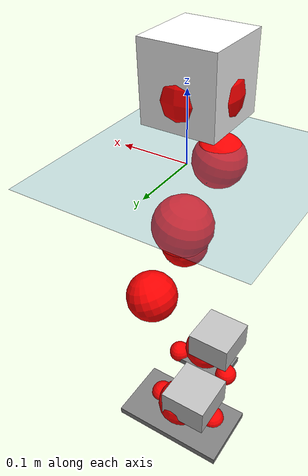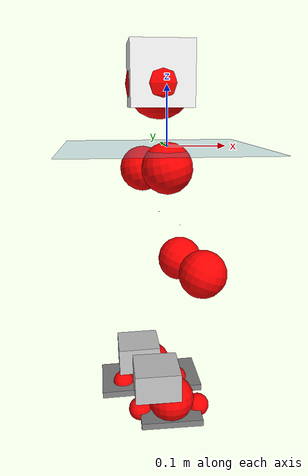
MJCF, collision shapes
<mujoco model="pi_12dof_release_v1">
  <compiler angle="radian" assetdir="assets" balanceinertia="true" inertiafromgeom="false"/>

  <option timestep="0.005" density="1.2" viscosity="2e-05"/>

  <size nkey="1"/>

  <visual>
    <quality shadowsize="8192"/>
    <map shadowclip="0.5"/>
  </visual>

  <default>
    <default class="/">
      <joint armature="0.01" damping="0.01" frictionloss="0.01"/>
      <geom contype="0" conaffinity="0" group="1" solref="-1000 -80"/>
      <site size="0.01 0.005 0.005" group="5"/>
      <general forcelimited="true" biastype="affine" gainprm="20" biasprm="0 -20 -0.5"/>
      <default class="foot">
        <geom size="0.0845 0.036 0.005" type="box" condim="6" group="4" priority="1" friction="0.9 0.2 0.2" solimp="0.015 1 0.005"/>
      </default>
      <default class="reward_collision_sphere">
        <geom group="5" rgba="1 0 0 1"/>
      </default>
    </default>
  </default>

  <asset>
    <texture type="skybox" colorspace="auto" name="//unnamed_texture_0" builtin="gradient" rgb1="0.95 0.95 0.95" rgb2="0.95 0.95 0.95" width="100" height="600"/>
    <texture type="2d" colorspace="auto" name="texplane" builtin="checker" rgb1="0.345 0.575 0.748" rgb2="0.345 0.575 0.748" markrgb="1 1 1" width="512" height="512"/>
    <material name="MatPlane" class="/" texture="texplane" texuniform="true" texrepeat="2 2" specular="0.9"/>
    <mesh name="baselink_1" class="/" file="baselink_1.STL"/>
    <mesh name="r_hip_pitch_link" class="/" file="r_hip_pitch_link.STL"/>
    <mesh name="r_hip_roll_link" class="/" file="r_hip_roll_link.STL"/>
    <mesh name="r_thigh_link" class="/" file="r_thigh_link.STL"/>
    <mesh name="r_calf_link" class="/" file="r_calf_link.STL"/>
    <mesh name="r_ankle_pitch_link" class="/" file="r_ankle_pitch_link.STL"/>
    <mesh name="r_ankle_roll_link" class="/" file="r_ankle_roll_link.STL"/>
    <mesh name="l_hip_pitch_link" class="/" file="l_hip_pitch_link.STL"/>
    <mesh name="l_hip_roll_link" class="/" file="l_hip_roll_link.STL"/>
    <mesh name="l_thigh_link" class="/" file="l_thigh_link.STL"/>
    <mesh name="l_calf_link" class="/" file="l_calf_link.STL"/>
    <mesh name="l_ankle_pitch_link" class="/" file="l_ankle_pitch_link.STL"/>
    <mesh name="l_ankle_roll_link" class="/" file="l_ankle_roll_link.STL"/>
  </asset>

  <worldbody>
    <geom name="floor" class="/" size="100 100 0.125" type="plane" group="0" material="MatPlane"/>
    <light name="toplight_shadow" class="/" pos="0 0 5" dir="0.0990148 0.0990148 -0.990148" type="directional" ambient="0.04 0.04 0.04" diffuse="0.55 0.55 0.55" specular="0.12 0.12 0.12"/>
    <light name="toplight_fill" class="/" pos="0 0 5" dir="0.0990148 0.0990148 -0.990148" type="directional" castshadow="false" ambient="0.04 0.04 0.04" diffuse="0.3 0.3 0.3" specular="0.08 0.08 0.08"/>
    <body name="trunk" pos="-0.0125747 -0.00584348 0.00096833" quat="0.999998 -0.0016736 -0.000719152 -0.000487466">
      <inertial pos="0.00117879 0.000767631 0.058086" quat="0.700534 0.01922 -0.0268882 0.712853" mass="2.23265" diaginertia="0.00201772 0.00281192 0.0229238"/>
      <joint name="//unnamed_joint_0" type="free"/>
      <geom name="//unnamed_geom_1" class="/" type="mesh" density="0" rgba="1 1 1 1" mesh="baselink_1"/>
      <geom name="//unnamed_geom_2" class="/" size="0.0505266 0.0505266 0.0505266" pos="0 0 0.113311" type="box" rgba="1 1 1 1"/>
      <geom name="//unnamed_geom_3" class="reward_collision_sphere" size="0.0555792" pos="0 0 0.0991475"/>
      <site name="imu" class="/" pos="-0.0211856 0.0106688 0.0704286" size="0.0101053"/>
      <camera name="track" class="/" pos="0 -1.67308 0" quat="0.707107 0.707107 0 0" mode="trackcom"/>
      <camera name="ego_camera" class="/" pos="0.0583997 0 0.254951" quat="-0.5 -0.5 0.5 0.5"/>
      <body name="r_hip_pitch_link" pos="-0.00291113 -0.0203939 -0.0385604" quat="0.991496 -0.00194783 -0.130121 -7.58769e-05">
        <inertial pos="0.0142137 -0.0402315 -0.00028867" quat="-0.0219484 0.706065 -0.0318611 0.707089" mass="0.399005" diaginertia="3.24211e-05 4.53045e-05 0.000485885"/>
        <joint name="r_hip_pitch_joint" class="/" pos="0 0 0" axis="-0.0235243 -0.998411 0.0512096" stiffness="0.00706345" range="-2.01796 1.0645" armature="0.00981817" damping="0" frictionloss="0.01043"/>
        <geom name="//unnamed_geom_4" class="/" type="mesh" density="0" rgba="0.75294 0.75294 0.75294 1" mesh="r_hip_pitch_link"/>
        <geom name="//unnamed_geom_5" class="/" size="0.000505266 0.000505266 0.000505266" type="box" rgba="0.75294 0.75294 0.75294 1"/>
        <body name="r_hip_roll_link" pos="0.00914763 -0.0479568 0.00773435" quat="0.999995 0.00264714 -0.00114814 -0.0013319">
          <inertial pos="0.000143598 -0.00276068 -0.0715518" quat="0.687388 -0.0744689 -0.106386 0.714587" mass="0.424216" diaginertia="0.000101907 0.000121386 0.000779388"/>
          <joint name="r_hip_roll_joint" class="/" pos="0 0 0" axis="-0.99833 -0.0572846 0.0074094" stiffness="0.0100722" range="-0.154656 0.249857" armature="0.00654111" damping="0.0387535" frictionloss="0.015174"/>
          <geom name="//unnamed_geom_6" class="/" type="mesh" density="0" rgba="0.75294 0.75294 0.75294 1" mesh="r_hip_roll_link"/>
          <geom name="//unnamed_geom_7" class="/" size="0.000505266 0.000505266 0.000505266" type="box" rgba="0.75294 0.75294 0.75294 1"/>
          <geom name="//unnamed_geom_8" class="reward_collision_sphere" size="0.0404212"/>
          <body name="r_thigh_link" pos="-0.00248471 0.0150473 -0.0973405" quat="0.999988 -0.00240233 0.00201971 -0.00381953">
            <inertial pos="-0.00696872 0.00455339 -0.068121" quat="0.73122 0.678852 -0.0174508 0.064604" mass="0.0928393" diaginertia="3.61623e-05 3.50614e-05 0.000338238"/>
            <joint name="r_thigh_joint" class="/" pos="0 0 0" axis="0.0290348 0.0288092 -0.999163" stiffness="0.0706034" range="-0.499874 0.315232" armature="0.0104401" damping="0.00255303" frictionloss="0.0135403"/>
            <geom name="//unnamed_geom_9" class="/" type="mesh" density="0" rgba="0.75294 0.75294 0.75294 1" mesh="r_thigh_link"/>
            <geom name="//unnamed_geom_10" class="/" size="0.000505266 0.000505266 0.000505266" type="box" rgba="0.75294 0.75294 0.75294 1"/>
            <body name="r_calf_link" pos="0.0147013 -0.0164891 -0.0881814" quat="0.947618 -6.23805e-05 0.319405 0.000194304">
              <inertial pos="-0.0145525 -0.00515831 -0.0856399" quat="0.998889 -0.0455857 0.00448236 0.0110677" mass="0.675211" diaginertia="0.000841279 0.00132255 0.000816105"/>
              <joint name="r_calf_joint" class="/" pos="0 0 0" axis="-0.00863819 -0.997769 -0.0661999" stiffness="0.0352512" range="-1.62937 0.634392" armature="0.00673651" damping="0.0187287" frictionloss="0.0114029"/>
              <geom name="//unnamed_geom_11" class="/" type="mesh" density="0" rgba="0.75294 0.75294 0.75294 1" mesh="r_calf_link"/>
              <geom name="//unnamed_geom_12" class="/" size="0.000505266 0.000505266 0.000505266" type="box" rgba="0.75294 0.75294 0.75294 1"/>
              <geom name="//unnamed_geom_13" class="reward_collision_sphere" size="0.0404212"/>
              <body name="r_ankle_pitch_link" pos="0.00113977 0.00677392 -0.206676" quat="0.980066 1.83093e-05 -0.19867 -5.74529e-07">
                <inertial pos="0.0110554 -0.0125871 -0.00420655" quat="-0.00257246 0.707935 -0.000230021 0.706273" mass="0.170839" diaginertia="8.639e-05 8.24466e-05 0.000636929"/>
                <joint name="r_ankle_pitch_joint" class="/" pos="0 0 0" axis="-0.0106878 -0.998941 0.0447567" range="-1.42591 0.512364" armature="0.0154593" damping="0" frictionloss="0.0151172"/>
                <geom name="//unnamed_geom_14" class="/" type="mesh" density="0" rgba="0.75294 0.75294 0.75294 1" mesh="r_ankle_pitch_link"/>
                <geom name="//unnamed_geom_15" class="/" size="0.0394107 0.0404212 0.0252633" type="box" rgba="0.75294 0.75294 0.75294 1"/>
                <body name="r_ankle_roll_link" pos="0.0641157 -0.00216079 -0.0118237" quat="0.999974 -0.00515102 7.71186e-05 -0.00505499">
                  <inertial pos="-0.0341876 0.00930086 -0.032092" quat="0.56053 0.437347 0.422199 0.56239" mass="0.631577" diaginertia="0.000302803 0.000369858 0.00136206"/>
                  <joint name="r_ankle_roll_joint" class="/" pos="0 0 0" axis="-0.997362 0.0612259 0.0390038" stiffness="0.0427782" range="-0.14159 0.199255" armature="0.00814851" damping="0" frictionloss="0.0113347"/>
                  <geom name="//unnamed_geom_16" class="/" type="mesh" density="0" rgba="0.75294 0.75294 0.75294 1" mesh="r_ankle_roll_link"/>
                  <geom name="//unnamed_geom_17" class="/" type="mesh" rgba="0.75294 0.75294 0.75294 1" mesh="r_ankle_roll_link"/>
                  <geom name="right_foot" class="foot" size="0.0538261 0.0319653 0.00564828" pos="-0.0397118 0 -0.0623213"/>
                  <geom name="//unnamed_geom_19" class="reward_collision_sphere" size="0.0404212" pos="-0.0389332 0 -0.0283279"/>
                  <geom name="//unnamed_geom_20" class="reward_collision_sphere" size="0.0202106" pos="0.0116799 0.0167308 -0.0566557"/>
                  <geom name="//unnamed_geom_21" class="reward_collision_sphere" size="0.0202106" pos="-0.0934396 0.0167308 -0.0566557"/>
                  <site name="right_foot" class="foot" pos="-0.0397118 0 -0.0623213" size="0.0101053"/>
                </body>
              </body>
            </body>
          </body>
        </body>
      </body>
      <body name="l_hip_pitch_link" pos="-0.0159129 0.0318553 -0.043502" quat="0.99236 -6.92608e-05 -0.123363 -0.0018424">
        <inertial pos="-0.0130468 0.0608333 0.000387306" quat="-0.0954134 0.709175 0.0482542 0.696878" mass="0.432448" diaginertia="3.81821e-05 4.31191e-05 0.000652011"/>
        <joint name="l_hip_pitch_joint" class="/" pos="0 0 0" axis="-0.0765115 0.99702 -0.00989391" stiffness="0.0635263" range="-0.983465 1.71132" armature="0.0167649" damping="0" frictionloss="0.00651719"/>
        <geom name="//unnamed_geom_22" class="/" type="mesh" density="0" rgba="0.75294 0.75294 0.75294 1" mesh="l_hip_pitch_link"/>
        <geom name="//unnamed_geom_23" class="/" size="0.000505266 0.000505266 0.000505266" type="box" rgba="0.75294 0.75294 0.75294 1"/>
        <body name="l_hip_roll_link" pos="-0.00779148 0.0417541 3.06514e-05" quat="0.999996 0.00176225 0.00101729 0.00190162">
          <inertial pos="-0.00488308 -0.0138264 -0.0868656" quat="0.735439 -0.0713628 -0.0862398 0.668281" mass="0.336055" diaginertia="9.32714e-05 9.85427e-05 0.000760649"/>
          <joint name="l_hip_roll_joint" class="/" pos="0 0 0" axis="-0.999274 -0.0102742 0.0366974" stiffness="0.0433183" range="-0.462502 -0.0261454" armature="0.00374443" damping="0.0442468" frictionloss="0.0142278"/>
          <geom name="//unnamed_geom_24" class="/" type="mesh" density="0" rgba="0.75294 0.75294 0.75294 1" mesh="l_hip_roll_link"/>
          <geom name="//unnamed_geom_25" class="/" size="0.000505266 0.000505266 0.000505266" type="box" rgba="0.75294 0.75294 0.75294 1"/>
          <geom name="//unnamed_geom_26" class="reward_collision_sphere" size="0.0404212"/>
          <body name="l_thigh_link" pos="0.00893562 -0.0113244 -0.083356" quat="0.999972 0.000894756 -0.00723592 -0.00159955">
            <inertial pos="-0.00139253 -0.000390604 -0.0831157" quat="0.66171 0.748963 0.0322645 -0.0123725" mass="0.13658" diaginertia="3.61064e-05 4.2446e-05 0.000333771"/>
            <joint name="l_thigh_joint" class="/" pos="0 0 0" axis="0.00727914 0.0248788 -0.999664" range="-0.327791 0.315342" armature="0.00991048" damping="0.0531047" frictionloss="0.00938491"/>
            <geom name="//unnamed_geom_27" class="/" type="mesh" density="0" rgba="0.75294 0.75294 0.75294 1" mesh="l_thigh_link"/>
            <geom name="//unnamed_geom_28" class="/" size="0.000505266 0.000505266 0.000505266" type="box" rgba="0.75294 0.75294 0.75294 1"/>
            <body name="l_calf_link" pos="0.0138276 -0.00623024 -0.0977832" quat="0.948424 -0.000863558 0.317003 0.00067408">
              <inertial pos="-0.00990744 -0.00441252 -0.100803" quat="0.997511 0.0494875 -0.0478563 -0.0152491" mass="0.876876" diaginertia="0.000937044 0.00131474 0.000917352"/>
              <joint name="l_calf_joint" class="/" pos="0 0 0" axis="-0.0604329 0.998098 -0.0122018" range="-0.843446 1.53482" armature="0.011089" damping="0.00223398" frictionloss="0.0159785"/>
              <geom name="//unnamed_geom_29" class="/" type="mesh" density="0" rgba="0.75294 0.75294 0.75294 1" mesh="l_calf_link"/>
              <geom name="//unnamed_geom_30" class="/" size="0.000505266 0.000505266 0.000505266" type="box" rgba="0.75294 0.75294 0.75294 1"/>
              <geom name="//unnamed_geom_31" class="reward_collision_sphere" size="0.0404212"/>
              <body name="l_ankle_pitch_link" pos="-0.00171109 0.00460252 -0.210818" quat="0.979898 -0.000283806 -0.19948 0.00268981">
                <inertial pos="-0.000291904 3.11731e-05 -0.0046602" quat="-0.0233063 0.715495 -0.0686214 0.694849" mass="0.191509" diaginertia="8.90575e-05 7.83232e-05 0.000556884"/>
                <joint name="l_ankle_pitch_joint" class="/" pos="0 0 0" axis="0.0105874 0.999657 -0.0239401" range="-0.693553 1.12291" armature="0.0125193" damping="0.0549808" frictionloss="0.00857839"/>
                <geom name="//unnamed_geom_32" class="/" type="mesh" density="0" rgba="0.75294 0.75294 0.75294 1" mesh="l_ankle_pitch_link"/>
                <geom name="//unnamed_geom_33" class="/" size="0.0394107 0.0404212 0.0252633" type="box" rgba="0.75294 0.75294 0.75294 1"/>
                <body name="l_ankle_roll_link" pos="0.0612655 0.00382052 0.00170862" quat="1 0.000323665 -7.07232e-05 7.32249e-05">
                  <inertial pos="-0.00617117 0.0146433 -0.0341279" quat="0.559386 0.427858 0.436218 0.560124" mass="0.464981" diaginertia="0.000368313 0.000365361 0.00166624"/>
                  <joint name="l_ankle_roll_joint" class="/" pos="0 0 0" axis="-0.999731 0.0228605 -0.00402274" range="-0.226172 0.329065" armature="0.00890246" damping="0" frictionloss="0.00386658"/>
                  <geom name="//unnamed_geom_34" class="/" type="mesh" density="0" rgba="0.75294 0.75294 0.75294 1" mesh="l_ankle_roll_link"/>
                  <geom name="//unnamed_geom_35" class="/" type="mesh" rgba="0.75294 0.75294 0.75294 1" mesh="l_ankle_roll_link"/>
                  <geom name="left_foot" class="foot" size="0.0958697 0.0535628 0.00609399" pos="-0.0397118 0 -0.0623213"/>
                  <geom name="//unnamed_geom_37" class="reward_collision_sphere" size="0.0404212" pos="-0.0389332 0 -0.0283279"/>
                  <geom name="//unnamed_geom_38" class="reward_collision_sphere" size="0.0202106" pos="0.0116799 -0.0167308 -0.0566557"/>
                  <geom name="//unnamed_geom_39" class="reward_collision_sphere" size="0.0202106" pos="-0.0934396 -0.0167308 -0.0566557"/>
                  <site name="left_foot" class="foot" pos="-0.0397118 0 -0.0623213" size="0.0101053"/>
                </body>
              </body>
            </body>
          </body>
        </body>
      </body>
    </body>
  </worldbody>

  <contact>
    <pair class="/" geom1="floor" geom2="right_foot" name="//unnamed_contact_1"/>
    <pair class="/" geom1="floor" geom2="left_foot" name="//unnamed_contact_0"/>
  </contact>

  <actuator>
    <general name="r_hip_pitch_joint" class="/" joint="r_hip_pitch_joint" forcerange="-16.0193 16.0193" gainprm="19.4522" biasprm="0 -19.4522 -0.537914"/>
    <general name="r_hip_roll_joint" class="/" joint="r_hip_roll_joint" forcerange="-10.8949 10.8949" gainprm="19.4522" biasprm="0 -19.4522 -0.537914"/>
    <general name="r_thigh_joint" class="/" joint="r_thigh_joint" forcerange="-25.879 25.879" gainprm="19.4522" biasprm="0 -19.4522 -0.537914"/>
    <general name="r_calf_joint" class="/" joint="r_calf_joint" forcerange="-9.81826 9.81826" gainprm="19.4522" biasprm="0 -19.4522 -0.537914"/>
    <general name="r_ankle_pitch_joint" class="/" joint="r_ankle_pitch_joint" forcerange="-24.4322 24.4322" gainprm="19.4522" biasprm="0 -19.4522 -0.537914"/>
    <general name="r_ankle_roll_joint" class="/" joint="r_ankle_roll_joint" forcerange="-17.4669 17.4669" gainprm="19.4522" biasprm="0 -19.4522 -0.537914"/>
    <general name="l_hip_pitch_joint" class="/" joint="l_hip_pitch_joint" forcerange="-22.228 22.228" gainprm="19.4522" biasprm="0 -19.4522 -0.537914"/>
    <general name="l_hip_roll_joint" class="/" joint="l_hip_roll_joint" forcerange="-30.5195 30.5195" gainprm="19.4522" biasprm="0 -19.4522 -0.537914"/>
    <general name="l_thigh_joint" class="/" joint="l_thigh_joint" forcerange="-16.2071 16.2071" gainprm="19.4522" biasprm="0 -19.4522 -0.537914"/>
    <general name="l_calf_joint" class="/" joint="l_calf_joint" forcerange="-22.0027 22.0027" gainprm="19.4522" biasprm="0 -19.4522 -0.537914"/>
    <general name="l_ankle_pitch_joint" class="/" joint="l_ankle_pitch_joint" forcerange="-19.7073 19.7073" gainprm="19.4522" biasprm="0 -19.4522 -0.537914"/>
    <general name="l_ankle_roll_joint" class="/" joint="l_ankle_roll_joint" forcerange="-14.5249 14.5249" gainprm="19.4522" biasprm="0 -19.4522 -0.537914"/>
  </actuator>

  <sensor>
    <gyro site="imu" name="imu_angular_velocity"/>
    <velocimeter site="imu" name="imu_linear_velocity"/>
    <framelinvel objtype="site" objname="left_foot" name="left_foot_global_linear_velocity"/>
    <framelinvel objtype="site" objname="right_foot" name="right_foot_global_linear_velocity"/>
  </sensor>

  <keyframe>
    <key name="home" qpos="0 0 0.291 1 0 0 0 0.4 0 0 -0.8 0.4 0 -0.4 0 0 0.8 -0.4 0"/>
  </keyframe>
</mujoco>
